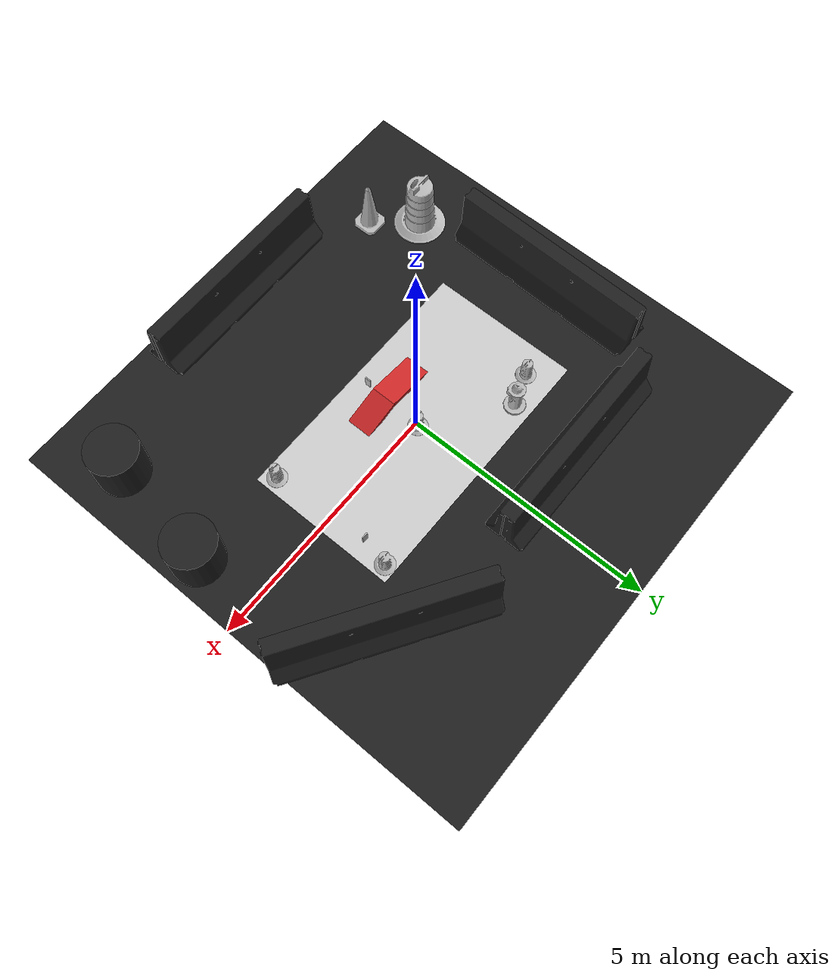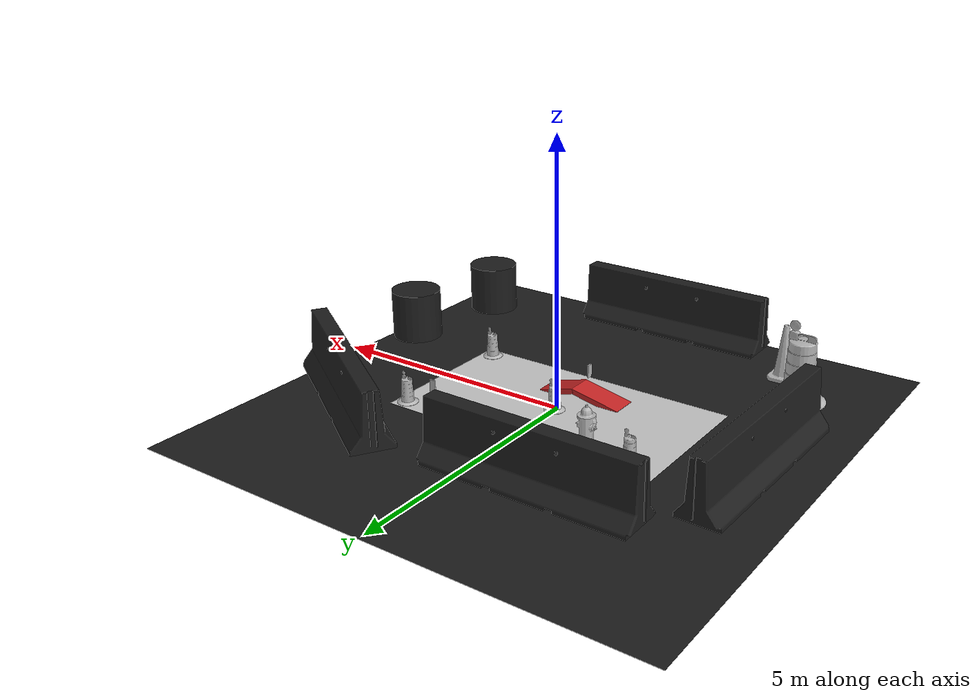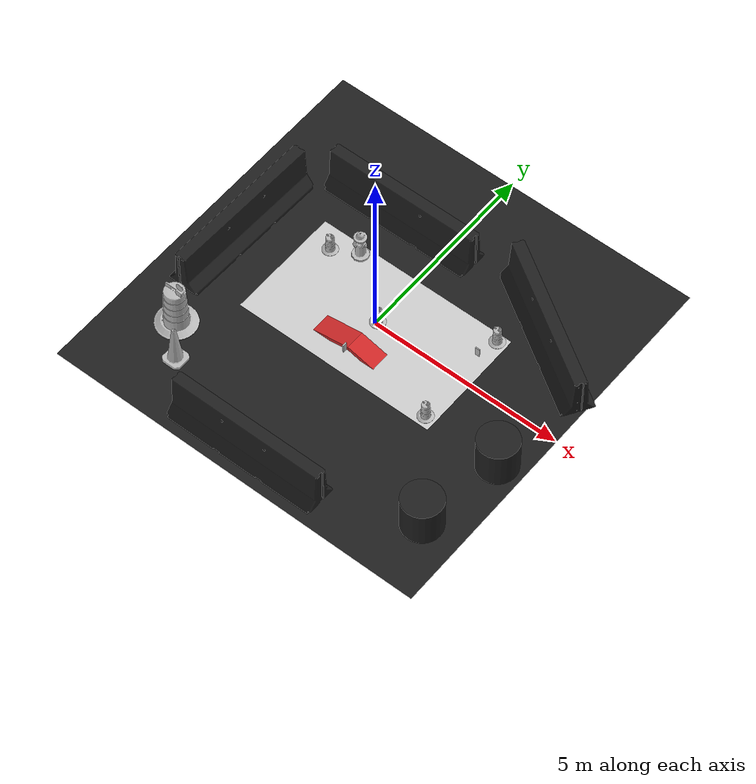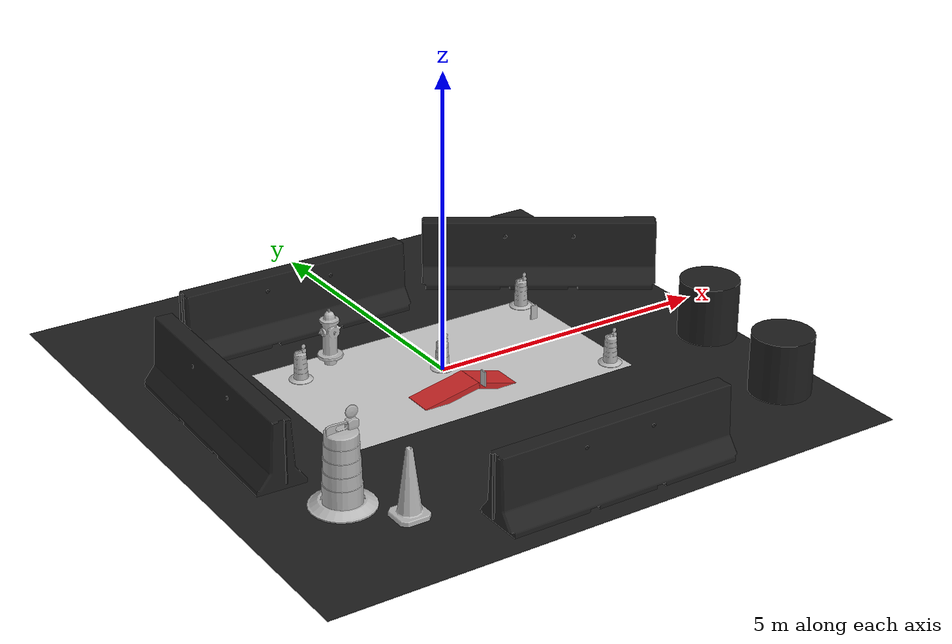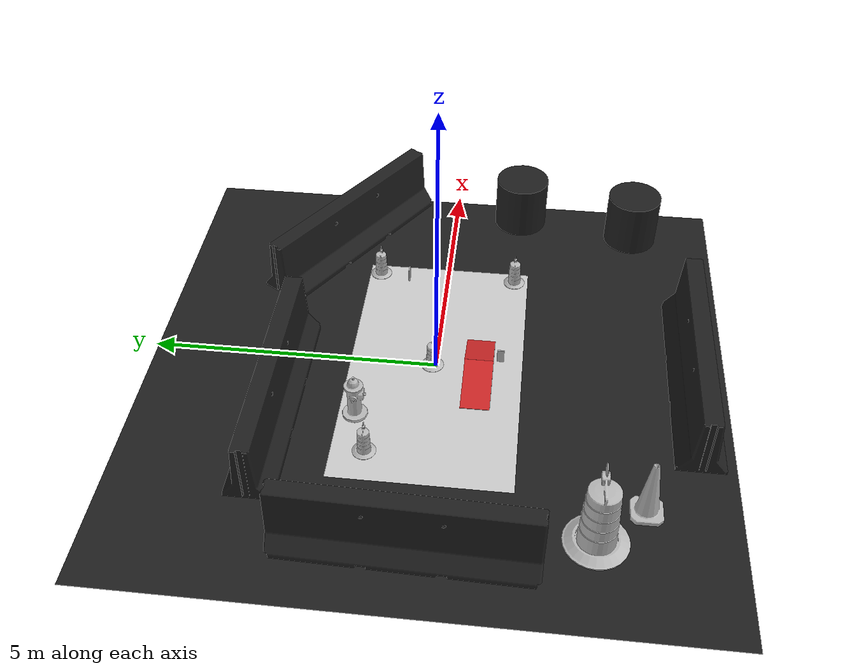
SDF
<sdf version="1.6">
 <world name="default">
  <scene>
   <ambient>0 0 0 1</ambient>
   <shadows>0</shadows>
   <grid>0</grid>
   <background>0.7 0.7 0.7 1</background>
  </scene>
  <model name="course">
   <static>1</static>
   <link name="course_link">
    <collision name="course_collision">
     <geometry><plane><normal>0 0 1</normal><size>5.325 3</size></plane></geometry>
     <surface><friction><ode><mu>100</mu><mu2>50</mu2></ode></friction></surface>
    </collision>
    <visual name="course_visual">
     <cast_shadows>0</cast_shadows>
     <geometry><plane><normal>0 0 1</normal><size>5.325 3</size></plane></geometry>
     <material>
      <script>
       <uri>model://turtlebot3_autorace/course/materials/scripts</uri>
       <uri>model://turtlebot3_autorace/course/materials/textures</uri>
       <name>course</name>
      </script>
     </material>
    </visual>
   </link>
  </model>
  <model name="box">
   <static>1</static>
   <pose>-0.457855 -0.747305 0.047618 0 -0.197895 0</pose>
   <link name="ramp_link">
    <collision name="collision"><geometry><box><size>1 0.5 0.1</size></box></geometry></collision>
    <visual name="visual">
     <geometry><box><size>1 0.5 0.1</size></box></geometry>
     <material>
      <script><name>Gazebo/Red</name><uri>file://media/materials/scripts/gazebo.material</uri></script>
     </material>
    </visual>
   </link>
  </model>
  <model name="box1">
   <static>1</static>
   <pose>0.488795 -0.744861 0.007633 0 0.283367 0</pose>
   <link name="ramp_link1">
    <collision name="collision"><geometry><box><size>1 0.5 0.1</size></box></geometry></collision>
    <visual name="visual">
     <geometry><box><size>1 0.5 0.1</size></box></geometry>
     <material>
      <script><name>Gazebo/Red</name><uri>file://media/materials/scripts/gazebo.material</uri></script>
     </material>
    </visual>
   </link>
  </model>
  <model name="traffic_parking">
   <static>1</static>
   <link name="box">
    <collision name="collision"><geometry><box><size>0.12 0.025 0.25</size></box></geometry></collision>
    <visual name="visual">
     <geometry><box><size>0.12 0.025 0.25</size></box></geometry>
     <material>
      <script>
       <uri>model://turtlebot3_autorace/traffic_parking/materials/scripts</uri>
       <uri>model://turtlebot3_autorace/traffic_parking/materials/textures</uri>
       <name>traffic_parking</name>
      </script>
     </material>
    </visual>
   </link>
   <pose>2.29475 0.738513 0.13 0 0 -0.003706</pose>
  </model>
  <model name="traffic_stop">
   <static>1</static>
   <link name="box">
    <collision name="collision"><geometry><box><size>0.12 0.025 0.25</size></box></geometry></collision>
    <visual name="visual">
     <geometry><box><size>0.12 0.025 0.25</size></box></geometry>
     <material>
      <script>
       <uri>model://turtlebot3_autorace/traffic_stop/materials/scripts</uri>
       <uri>model://turtlebot3_autorace/traffic_stop/materials/textures</uri>
       <name>traffic_stop</name>
      </script>
     </material>
    </visual>
   </link>
   <pose>0.030116 -1.10967 0.322152 0 0 -1.57493</pose>
  </model>
  <light name="sun" type="directional">
   <pose>0 0 10 0 -0 0</pose>
   <diffuse>0.8 0.8 0.8 1</diffuse>
   <specular>0.1 0.1 0.1 1</specular>
   <attenuation>
    <range>1000</range>
    <constant>0.9</constant>
    <linear>0.01</linear>
    <quadratic>0.001</quadratic>
   </attenuation>
   <direction>-0.5 0.5 -1</direction>
  </light>
  <model name="ground2">
   <pose>0 0 -0.1 0 -0 0</pose>
   <static>1</static>
   <link name="ground">
    <collision name="ground_coll"><geometry><box><size>8 8 0.01</size></box></geometry></collision>
    <visual name="ground_vis">
     <geometry><box><size>10 10 0.01</size></box></geometry>
     <material>
      <script><uri>file://media/materials/scripts/gazebo.material</uri><name>Gazebo/FlatBlack</name></script>
     </material>
    </visual>
   </link>
  </model>
  <gravity>0 0 -9.8</gravity>
  <magnetic_field>6e-06 2.3e-05 -4.2e-05</magnetic_field>
  <atmosphere type="adiabatic"/>
  <physics name="default_physics" default="0" type="ode">
   <max_step_size>0.001</max_step_size>
   <real_time_factor>1</real_time_factor>
   <real_time_update_rate>1000</real_time_update_rate>
  </physics>
  <spherical_coordinates>
   <surface_model>EARTH_WGS84</surface_model>
   <latitude_deg>0</latitude_deg>
   <longitude_deg>0</longitude_deg>
   <elevation>0</elevation>
   <heading_deg>0</heading_deg>
  </spherical_coordinates>
  <light name="user_point_light_2" type="point">
   <pose>-0.948146 0.604519 1 0 -0 0</pose>
   <diffuse>0.5 0.5 0.5 1</diffuse>
   <specular>0.1 0.1 0.1 1</specular>
   <attenuation>
    <range>20</range>
    <constant>0.5</constant>
    <linear>0.01</linear>
    <quadratic>0.001</quadratic>
   </attenuation>
   <cast_shadows>0</cast_shadows>
   <direction>0 0 -1</direction>
  </light>
  <light name="user_point_light_6" type="point">
   <pose>1.63854 1.69565 1 0 -0 0</pose>
   <diffuse>0.5 0.5 0.5 1</diffuse>
   <specular>0.1 0.1 0.1 1</specular>
   <attenuation>
    <range>20</range>
    <constant>0.5</constant>
    <linear>0.01</linear>
    <quadratic>0.001</quadratic>
   </attenuation>
   <cast_shadows>0</cast_shadows>
   <direction>0 0 -1</direction>
  </light>
  <light name="user_point_light_7" type="point">
   <pose>0.42 -3.31 1 0 -0 0</pose>
   <diffuse>0.5 0.5 0.5 1</diffuse>
   <specular>0.1 0.1 0.1 1</specular>
   <attenuation>
    <range>20</range>
    <constant>0.5</constant>
    <linear>0.01</linear>
    <quadratic>0.001</quadratic>
   </attenuation>
   <cast_shadows>0</cast_shadows>
   <direction>0 0 -1</direction>
  </light>
  <light name="user_point_light_8" type="point">
   <pose>-1.8 1.5 1 0 -0 0</pose>
   <diffuse>0.5 0.5 0.5 1</diffuse>
   <specular>0.1 0.1 0.1 1</specular>
   <attenuation>
    <range>20</range>
    <constant>0.5</constant>
    <linear>0.01</linear>
    <quadratic>0.001</quadratic>
   </attenuation>
   <cast_shadows>0</cast_shadows>
   <direction>0 0 -1</direction>
  </light>
  <model name="Construction Barrel">
   <link name="link">
    <inertial>
     <pose>0 0 0.4 0 -0 0</pose>
     <mass>500</mass>
     <inertia><ixx>51.2096</ixx><iyy>51.2096</iyy><izz>25</izz><ixy>0</ixy><ixz>0</ixz><iyz>0</iyz></inertia>
    </inertial>
    <collision name="collision">
     <geometry>
      <mesh>
       <uri>model://construction_barrel/meshes/construction_barrel.dae</uri>
       <scale>0.384082 0.384082 0.384082</scale>
      </mesh>
     </geometry>
    </collision>
    <visual name="visual">
     <geometry>
      <mesh>
       <uri>model://construction_barrel/meshes/construction_barrel.dae</uri>
       <scale>0.384082 0.384082 0.384082</scale>
      </mesh>
     </geometry>
    </visual>
   </link>
   <pose>-2.0718 0.947899 -0 -1e-06 3e-06 0.000639</pose>
  </model>
  <model name="Construction Barrel_clone">
   <link name="link">
    <inertial>
     <pose>0 0 0.4 0 -0 0</pose>
     <mass>500</mass>
     <inertia><ixx>51.2096</ixx><iyy>51.2096</iyy><izz>25</izz><ixy>0</ixy><ixz>0</ixz><iyz>0</iyz></inertia>
    </inertial>
    <collision name="collision">
     <geometry>
      <mesh>
       <uri>model://construction_barrel/meshes/construction_barrel.dae</uri>
       <scale>0.384082 0.384082 0.384082</scale>
      </mesh>
     </geometry>
    </collision>
    <visual name="visual">
     <geometry>
      <mesh>
       <uri>model://construction_barrel/meshes/construction_barrel.dae</uri>
       <scale>0.384082 0.384082 0.384082</scale>
      </mesh>
     </geometry>
    </visual>
   </link>
   <pose>2.40584 -1.24287 0 0 -0 0.002916</pose>
  </model>
  <model name="Construction Barrel_clone_0">
   <link name="link">
    <inertial>
     <pose>0 0 0.4 0 -0 0</pose>
     <mass>500</mass>
     <inertia><ixx>51.2096</ixx><iyy>51.2096</iyy><izz>25</izz><ixy>0</ixy><ixz>0</ixz><iyz>0</iyz></inertia>
    </inertial>
    <collision name="collision">
     <geometry>
      <mesh>
       <uri>model://construction_barrel/meshes/construction_barrel.dae</uri>
       <scale>0.384082 0.384082 0.384082</scale>
      </mesh>
     </geometry>
    </collision>
    <visual name="visual">
     <geometry>
      <mesh>
       <uri>model://construction_barrel/meshes/construction_barrel.dae</uri>
       <scale>0.384082 0.384082 0.384082</scale>
      </mesh>
     </geometry>
    </visual>
   </link>
   <pose>2.41656 1.29418 -0 0 -0 0.002847</pose>
  </model>
  <model name="Construction Barrel_clone_1">
   <link name="link">
    <inertial>
     <pose>0 0 0.4 0 -0 0</pose>
     <mass>500</mass>
     <inertia><ixx>51.2096</ixx><iyy>51.2096</iyy><izz>25</izz><ixy>0</ixy><ixz>0</ixz><iyz>0</iyz></inertia>
    </inertial>
    <collision name="collision">
     <geometry>
      <mesh>
       <uri>model://construction_barrel/meshes/construction_barrel.dae</uri>
       <scale>0.384082 0.384082 0.384082</scale>
      </mesh>
     </geometry>
    </collision>
    <visual name="visual">
     <geometry>
      <mesh>
       <uri>model://construction_barrel/meshes/construction_barrel.dae</uri>
       <scale>0.384082 0.384082 0.384082</scale>
      </mesh>
     </geometry>
    </visual>
   </link>
   <pose>0.021701 0.060044 -0 0 -0 0.00274</pose>
  </model>
  <model name="fire_hydrant">
   <static>1</static>
   <link name="link">
    <collision name="collision">
     <geometry>
      <mesh><uri>model://fire_hydrant/meshes/fire_hydrant.dae</uri><scale>1.02088 1.02088 1.02088</scale></mesh>
     </geometry>
    </collision>
    <visual name="visual">
     <geometry>
      <mesh><uri>model://fire_hydrant/meshes/fire_hydrant.dae</uri><scale>1.02088 1.02088 1.02088</scale></mesh>
     </geometry>
    </visual>
   </link>
   <pose>-1.38973 1.19576 0 0 -0 0</pose>
  </model>
  <model name="unit_cylinder">
   <pose>4.05689 -3.44878 0.499997 3e-06 2e-06 0</pose>
   <link name="link">
    <inertial>
     <mass>1</mass>
     <inertia><ixx>0.145833</ixx><ixy>0</ixy><ixz>0</ixz><iyy>0.145833</iyy><iyz>0</iyz><izz>0.125</izz></inertia>
    </inertial>
    <collision name="collision">
     <geometry><cylinder><radius>0.5</radius><length>1</length></cylinder></geometry>
    </collision>
    <visual name="visual">
     <geometry><cylinder><radius>0.5</radius><length>1</length></cylinder></geometry>
     <material>
      <script><name>Gazebo/FlatBlack</name><uri>file://media/materials/scripts/gazebo.material</uri></script>
     </material>
    </visual>
   </link>
  </model>
  <model name="Construction Cone">
   <link name="link">
    <collision name="collision">
     <geometry>
      <mesh><scale>10 10 10</scale><uri>model://construction_cone/meshes/construction_cone.dae</uri></mesh>
     </geometry>
    </collision>
    <visual name="visual">
     <geometry>
      <mesh><scale>10 10 10</scale><uri>model://construction_cone/meshes/construction_cone.dae</uri></mesh>
     </geometry>
    </visual>
    <inertial>
     <inertia><ixx>1</ixx><ixy>0</ixy><ixz>0</ixz><iyy>1</iyy><iyz>0</iyz><izz>1</izz></inertia>
     <mass>1</mass>
    </inertial>
   </link>
   <pose>-2.81897 -3.50745 -0 0 -0 0</pose>
  </model>
  <model name="jersey_barrier">
   <static>1</static>
   <link name="link">
    <visual name="visual">
     <geometry><mesh><uri>model://jersey_barrier/meshes/jersey_barrier.dae</uri></mesh></geometry>
     <material>
      <script><name>Gazebo/FlatBlack</name><uri>file://media/materials/scripts/gazebo.material</uri></script>
     </material>
    </visual>
    <collision name="upright">
     <pose>0 0 0.5715 0 -0 0</pose>
     <geometry><box><size>4.06542 0.3063 1.143</size></box></geometry>
    </collision>
    <collision name="base">
     <pose>0 0 0.032258 0 -0 0</pose>
     <geometry><box><size>4.06542 0.8107 0.064516</size></box></geometry>
    </collision>
    <collision name="base2">
     <pose>0 0 0.1 0 -0 0</pose>
     <geometry><box><size>4.06542 0.65 0.1</size></box></geometry>
    </collision>
    <collision name="base3">
     <pose>0 0 0.2 0 -0 0</pose>
     <geometry><box><size>4.06542 0.5 0.1</size></box></geometry>
    </collision>
    <collision name="left-angle">
     <pose>0 -0.224 0.2401 0.9 -0 0</pose>
     <geometry><box><size>4.06542 0.5 0.064516</size></box></geometry>
    </collision>
    <collision name="right-angle">
     <pose>0 0.224 0.2401 -0.9 0 0</pose>
     <geometry><box><size>4.06542 0.5 0.064516</size></box></geometry>
    </collision>
   </link>
   <pose>0.041318 -4.39671 0 0 -0 0</pose>
  </model>
  <model name="jersey_barrier_clone">
   <static>1</static>
   <link name="link">
    <visual name="visual">
     <geometry><mesh><uri>model://jersey_barrier/meshes/jersey_barrier.dae</uri></mesh></geometry>
     <material>
      <script><name>Gazebo/FlatBlack</name><uri>file://media/materials/scripts/gazebo.material</uri></script>
     </material>
    </visual>
    <collision name="upright">
     <pose>0 0 0.5715 0 -0 0</pose>
     <geometry><box><size>4.06542 0.3063 1.143</size></box></geometry>
    </collision>
    <collision name="base">
     <pose>0 0 0.032258 0 -0 0</pose>
     <geometry><box><size>4.06542 0.8107 0.064516</size></box></geometry>
    </collision>
    <collision name="base2">
     <pose>0 0 0.1 0 -0 0</pose>
     <geometry><box><size>4.06542 0.65 0.1</size></box></geometry>
    </collision>
    <collision name="base3">
     <pose>0 0 0.2 0 -0 0</pose>
     <geometry><box><size>4.06542 0.5 0.1</size></box></geometry>
    </collision>
    <collision name="left-angle">
     <pose>0 -0.224 0.2401 0.9 -0 0</pose>
     <geometry><box><size>4.06542 0.5 0.064516</size></box></geometry>
    </collision>
    <collision name="right-angle">
     <pose>0 0.224 0.2401 -0.9 0 0</pose>
     <geometry><box><size>4.06542 0.5 0.064516</size></box></geometry>
    </collision>
   </link>
   <pose>-1.25353 2.57739 0 0 -0 0</pose>
  </model>
  <model name="jersey_barrier_clone_0">
   <static>1</static>
   <link name="link">
    <visual name="visual">
     <geometry><mesh><uri>model://jersey_barrier/meshes/jersey_barrier.dae</uri></mesh></geometry>
     <material>
      <script><name>Gazebo/FlatBlack</name><uri>file://media/materials/scripts/gazebo.material</uri></script>
     </material>
    </visual>
    <collision name="upright">
     <pose>0 0 0.5715 0 -0 0</pose>
     <geometry><box><size>4.06542 0.3063 1.143</size></box></geometry>
    </collision>
    <collision name="base">
     <pose>0 0 0.032258 0 -0 0</pose>
     <geometry><box><size>4.06542 0.8107 0.064516</size></box></geometry>
    </collision>
    <collision name="base2">
     <pose>0 0 0.1 0 -0 0</pose>
     <geometry><box><size>4.06542 0.65 0.1</size></box></geometry>
    </collision>
    <collision name="base3">
     <pose>0 0 0.2 0 -0 0</pose>
     <geometry><box><size>4.06542 0.5 0.1</size></box></geometry>
    </collision>
    <collision name="left-angle">
     <pose>0 -0.224 0.2401 0.9 -0 0</pose>
     <geometry><box><size>4.06542 0.5 0.064516</size></box></geometry>
    </collision>
    <collision name="right-angle">
     <pose>0 0.224 0.2401 -0.9 0 0</pose>
     <geometry><box><size>4.06542 0.5 0.064516</size></box></geometry>
    </collision>
   </link>
   <pose>3.26942 1.99351 0 0 0 -0.571296</pose>
  </model>
  <model name="jersey_barrier_clone_1">
   <static>1</static>
   <link name="link">
    <visual name="visual">
     <geometry><mesh><uri>model://jersey_barrier/meshes/jersey_barrier.dae</uri></mesh></geometry>
     <material>
      <script><name>Gazebo/FlatBlack</name><uri>file://media/materials/scripts/gazebo.material</uri></script>
     </material>
    </visual>
    <collision name="upright">
     <pose>0 0 0.5715 0 -0 0</pose>
     <geometry><box><size>4.06542 0.3063 1.143</size></box></geometry>
    </collision>
    <collision name="base">
     <pose>0 0 0.032258 0 -0 0</pose>
     <geometry><box><size>4.06542 0.8107 0.064516</size></box></geometry>
    </collision>
    <collision name="base2">
     <pose>0 0 0.1 0 -0 0</pose>
     <geometry><box><size>4.06542 0.65 0.1</size></box></geometry>
    </collision>
    <collision name="base3">
     <pose>0 0 0.2 0 -0 0</pose>
     <geometry><box><size>4.06542 0.5 0.1</size></box></geometry>
    </collision>
    <collision name="left-angle">
     <pose>0 -0.224 0.2401 0.9 -0 0</pose>
     <geometry><box><size>4.06542 0.5 0.064516</size></box></geometry>
    </collision>
    <collision name="right-angle">
     <pose>0 0.224 0.2401 -0.9 0 0</pose>
     <geometry><box><size>4.06542 0.5 0.064516</size></box></geometry>
    </collision>
   </link>
   <pose>-3.91841 0.06172 0 0 0 -1.59634</pose>
  </model>
  <model name="Construction Barrel_0">
   <link name="link">
    <inertial>
     <pose>0 0 0.4 0 -0 0</pose>
     <mass>500</mass>
     <inertia><ixx>51.2096</ixx><iyy>51.2096</iyy><izz>25</izz><ixy>0</ixy><ixz>0</ixz><iyz>0</iyz></inertia>
    </inertial>
    <collision name="collision">
     <geometry><mesh><uri>model://construction_barrel/meshes/construction_barrel.dae</uri></mesh></geometry>
    </collision>
    <visual name="visual">
     <geometry><mesh><uri>model://construction_barrel/meshes/construction_barrel.dae</uri></mesh></geometry>
    </visual>
   </link>
   <pose>-3.45302 -2.74165 1e-06 3e-06 2e-06 -2e-05</pose>
  </model>
  <model name="unit_cylinder_0">
   <pose>4.39775 -1.26863 0.499997 3e-06 4e-06 -0</pose>
   <link name="link">
    <inertial>
     <mass>1</mass>
     <inertia><ixx>0.145833</ixx><ixy>0</ixy><ixz>0</ixz><iyy>0.145833</iyy><iyz>0</iyz><izz>0.125</izz></inertia>
    </inertial>
    <collision name="collision">
     <geometry><cylinder><radius>0.5</radius><length>1</length></cylinder></geometry>
    </collision>
    <visual name="visual">
     <geometry><cylinder><radius>0.5</radius><length>1</length></cylinder></geometry>
     <material>
      <script><name>Gazebo/FlatBlack</name><uri>file://media/materials/scripts/gazebo.material</uri></script>
     </material>
    </visual>
   </link>
  </model>
 </world>
</sdf>
